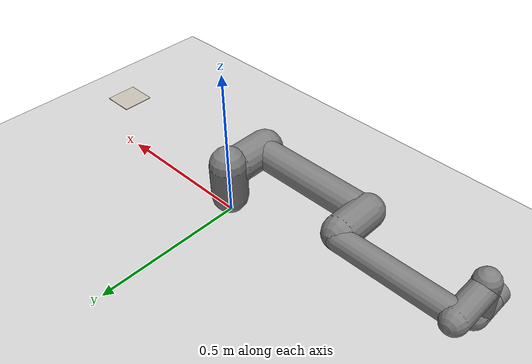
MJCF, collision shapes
<mujoco model="ur5e_ibvs_scene">

  <include file="../models/ur5e_with_camera.xml"/>

  <option timestep="0.002"/>

  <compiler meshdir="../models/assets" texturedir="../meshes"/>

  <visual>
    <map znear="0.05" zfar="2.0"/>
    <headlight active="1" ambient="0.2 0.2 0.2" diffuse="0.6 0.6 0.6" specular="0 0 0"/>
    <quality shadowsize="4096"/>
  </visual>

  <asset>
    <texture type="2d" name="aruco_tex" file="aruco_marker.png"/>
    <material name="aruco_mat" texture="aruco_tex" texrepeat="1 1" specular="0.4" shininess="0.1"/>
  </asset>

  <worldbody>
    <geom name="floor" type="plane" size="2 2 0.1" rgba="0.8 0.8 0.8 1" contype="1" conaffinity="1"/>

    <light name="main_light" pos="0 0 4" dir="0 0 -1" diffuse="0.6 0.6 0.6" specular="0.1 0.1 0.1" castshadow="true"/>

    <body name="aruco_target" pos="0.5 0.0 0.2" mocap="true">
      <geom name="aruco_geom" type="box" size="0.05 0.05 0.001" material="aruco_mat" contype="1" conaffinity="1" density="1000"/>
    </body>

  </worldbody>

</mujoco>

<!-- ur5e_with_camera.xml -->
<mujoco model="ur5e_with_camera">
  <compiler angle="radian" autolimits="true"/>

  <option integrator="implicitfast"/>

  <default>
    <default class="ur5e">
      <material specular="0.5" shininess="0.25"/>
      <joint axis="0 1 0" range="-6.28319 6.28319" armature="0.1"/>
      <general gaintype="fixed" biastype="affine" ctrlrange="-6.2831 6.2831" gainprm="2000" biasprm="0 -2000 -400"
        forcerange="-150 150"/>
      <default class="size3">
        <default class="size3_limited">
          <joint range="-3.1415 3.1415"/>
          <general ctrlrange="-3.1415 3.1415"/>
        </default>
      </default>
      <default class="size1">
        <general gainprm="500" biasprm="0 -500 -100" forcerange="-28 28"/>
      </default>
      <default class="visual">
        <geom type="mesh" contype="0" conaffinity="0" group="2"/>
      </default>
      <default class="collision">
        <geom type="capsule" group="3"/>
        <default class="eef_collision">
          <geom type="cylinder"/>
        </default>
      </default>
      <site size="0.001" rgba="0.5 0.5 0.5 0.3" group="4"/>
    </default>
  </default>

  <asset>
    <material class="ur5e" name="black" rgba="0.033 0.033 0.033 1"/>
    <material class="ur5e" name="jointgray" rgba="0.278 0.278 0.278 1"/>
    <material class="ur5e" name="linkgray" rgba="0.82 0.82 0.82 1"/>
    <material class="ur5e" name="urblue" rgba="0.49 0.678 0.8 1"/>

    <mesh file="base_0.obj"/>
    <mesh file="base_1.obj"/>
    <mesh file="shoulder_0.obj"/>
    <mesh file="shoulder_1.obj"/>
    <mesh file="shoulder_2.obj"/>
    <mesh file="upperarm_0.obj"/>
    <mesh file="upperarm_1.obj"/>
    <mesh file="upperarm_2.obj"/>
    <mesh file="upperarm_3.obj"/>
    <mesh file="forearm_0.obj"/>
    <mesh file="forearm_1.obj"/>
    <mesh file="forearm_2.obj"/>
    <mesh file="forearm_3.obj"/>
    <mesh file="wrist1_0.obj"/>
    <mesh file="wrist1_1.obj"/>
    <mesh file="wrist1_2.obj"/>
    <mesh file="wrist2_0.obj"/>
    <mesh file="wrist2_1.obj"/>
    <mesh file="wrist2_2.obj"/>
    <mesh file="wrist3.obj"/>
  </asset>

  <worldbody>
    <light name="spotlight" mode="targetbodycom" target="wrist_2_link" pos="0 -1 2"/>
    <body name="base" quat="0 0 0 -1" childclass="ur5e">
      <inertial mass="4.0" pos="0 0 0" diaginertia="0.00443333156 0.00443333156 0.0072"/>
      <geom mesh="base_0" material="black" class="visual"/>
      <geom mesh="base_1" material="jointgray" class="visual"/>
      <body name="shoulder_link" pos="0 0 0.163">
        <inertial mass="3.7" pos="0 0 0" diaginertia="0.0102675 0.0102675 0.00666"/>
        <joint name="shoulder_pan_joint" class="size3" axis="0 0 1"/>
        <geom mesh="shoulder_0" material="urblue" class="visual"/>
        <geom mesh="shoulder_1" material="black" class="visual"/>
        <geom mesh="shoulder_2" material="jointgray" class="visual"/>
        <geom class="collision" size="0.06 0.06" pos="0 0 -0.04"/>
        <body name="upper_arm_link" pos="0 0.138 0" quat="1 0 1 0">
          <inertial mass="8.393" pos="0 0 0.2125" diaginertia="0.133886 0.133886 0.0151074"/>
          <joint name="shoulder_lift_joint" class="size3"/>
          <geom mesh="upperarm_0" material="linkgray" class="visual"/>
          <geom mesh="upperarm_1" material="black" class="visual"/>
          <geom mesh="upperarm_2" material="jointgray" class="visual"/>
          <geom mesh="upperarm_3" material="urblue" class="visual"/>
          <geom class="collision" pos="0 -0.04 0" quat="1 1 0 0" size="0.06 0.06"/>
          <geom class="collision" size="0.05 0.2" pos="0 0 0.2"/>
          <body name="forearm_link" pos="0 -0.131 0.425">
            <inertial mass="2.275" pos="0 0 0.196" diaginertia="0.0311796 0.0311796 0.004095"/>
            <joint name="elbow_joint" class="size3_limited"/>
            <geom mesh="forearm_0" material="urblue" class="visual"/>
            <geom mesh="forearm_1" material="linkgray" class="visual"/>
            <geom mesh="forearm_2" material="black" class="visual"/>
            <geom mesh="forearm_3" material="jointgray" class="visual"/>
            <geom class="collision" pos="0 0.08 0" quat="1 1 0 0" size="0.055 0.06"/>
            <geom class="collision" size="0.038 0.19" pos="0 0 0.2"/>
            <body name="wrist_1_link" pos="0 0 0.392" quat="1 0 1 0">
              <inertial mass="1.219" pos="0 0.127 0" diaginertia="0.0025599 0.0025599 0.0021942"/>
              <joint name="wrist_1_joint" class="size1"/>
              <geom mesh="wrist1_0" material="black" class="visual"/>
              <geom mesh="wrist1_1" material="urblue" class="visual"/>
              <geom mesh="wrist1_2" material="jointgray" class="visual"/>
              <geom class="collision" pos="0 0.05 0" quat="1 1 0 0" size="0.04 0.07"/>
              <body name="wrist_2_link" pos="0 0.127 0">
                <inertial mass="1.219" pos="0 0 0.1" diaginertia="0.0025599 0.0025599 0.0021942"/>
                <joint name="wrist_2_joint" axis="0 0 1" class="size1"/>
                <geom mesh="wrist2_0" material="black" class="visual"/>
                <geom mesh="wrist2_1" material="urblue" class="visual"/>
                <geom mesh="wrist2_2" material="jointgray" class="visual"/>
                <geom class="collision" size="0.04 0.06" pos="0 0 0.04"/>
                <geom class="collision" pos="0 0.02 0.1" quat="1 1 0 0" size="0.04 0.04"/>
                <body name="wrist_3_link" pos="0 0 0.1">
                  <inertial mass="0.1889" pos="0 0.0771683 0" quat="1 0 0 1"
                    diaginertia="0.000132134 9.90863e-05 9.90863e-05"/>
                  <joint name="wrist_3_joint" class="size1"/>
                  <geom material="linkgray" mesh="wrist3" class="visual"/>
                  <geom class="eef_collision" pos="0 0.08 0" quat="1 1 0 0" size="0.04 0.02"/>
                  <site name="attachment_site" pos="0 0.1 0" quat="-1 1 0 0"/>
                  <camera name="left_camera" pos="-0.04 0.05 0" xyaxes="1 0 0 0 0 1" fovy="45"/>
                  <camera name="right_camera" pos="0.04 0.05 0" xyaxes="1 0 0 0 0 1" fovy="45"/>
                </body>
              </body>
            </body>
          </body>
        </body>
      </body>
    </body>
  </worldbody>

  <actuator>
    <general class="size3" name="shoulder_pan" joint="shoulder_pan_joint"/>
    <general class="size3" name="shoulder_lift" joint="shoulder_lift_joint"/>
    <general class="size3_limited" name="elbow" joint="elbow_joint"/>
    <general class="size1" name="wrist_1" joint="wrist_1_joint"/>
    <general class="size1" name="wrist_2" joint="wrist_2_joint"/>
    <general class="size1" name="wrist_3" joint="wrist_3_joint"/>
  </actuator>

  <keyframe>
    <key name="home" qpos="-1.5708 0 0 -1.5708 -1.5708 0" ctrl="-1.5708 -1.5708 1.5708 -1.5708 -1.5708 0"/>
  </keyframe>
</mujoco>
